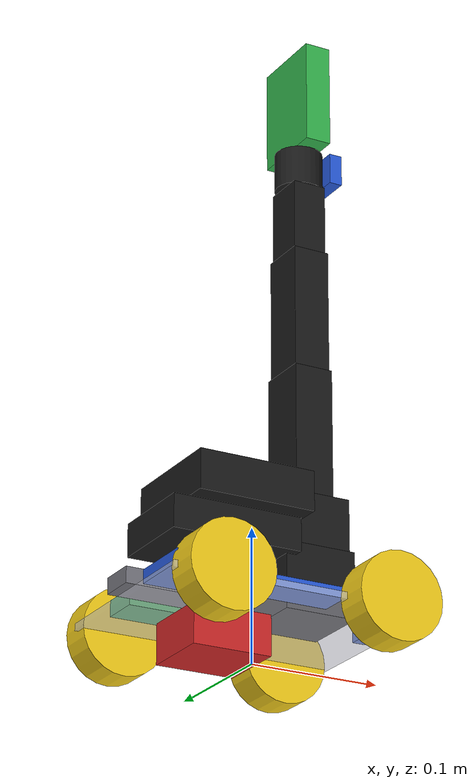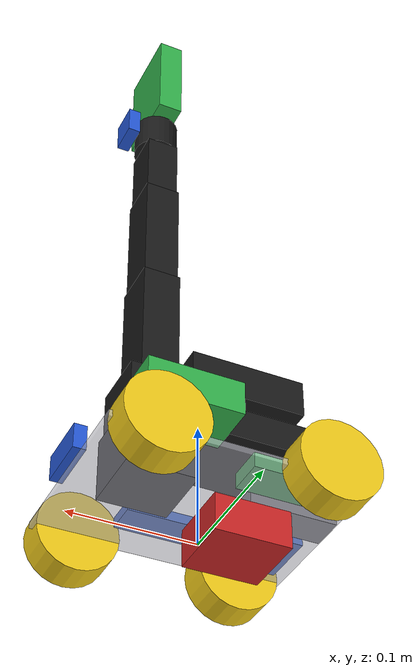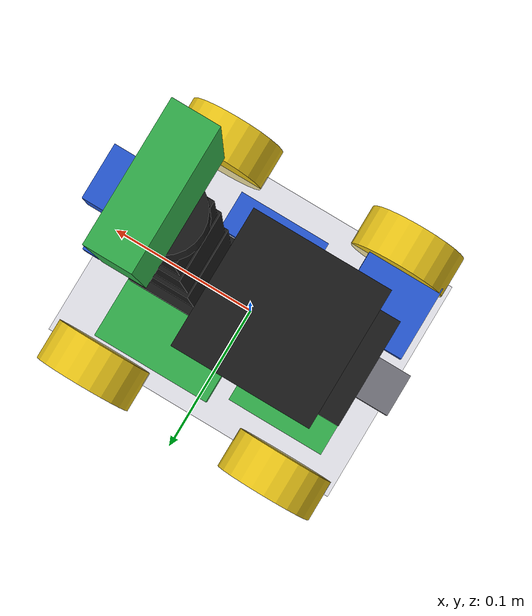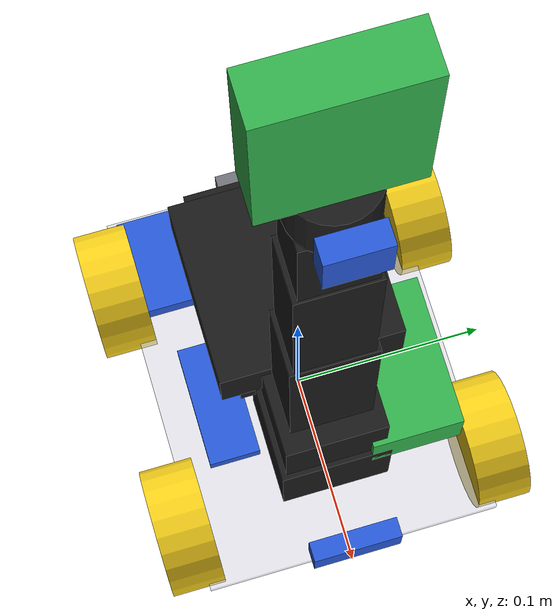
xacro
<?xml version="1.0"?>
<robot name="melvinn" xmlns:xacro="http://www.ros.org/wiki/xacro">

  <xacro:include filename="$(find melvinn_description)/urdf/inertia.xacro"/>

  <!-- ===================== dimensions (metres) ===================== -->
  <xacro:property name="chassis_len"   value="0.200"/>
  <xacro:property name="chassis_wid"   value="0.150"/>
  <xacro:property name="chassis_thick" value="0.005"/>

  <xacro:property name="wheel_radius"  value="0.0325"/>
  <xacro:property name="wheel_width"   value="0.027"/>
  <xacro:property name="wheel_x"       value="0.065"/>
  <xacro:property name="wheel_y"       value="0.080"/>

  <xacro:property name="arm_base_h"    value="0.050"/>
  <xacro:property name="upper_arm_len" value="0.100"/>
  <xacro:property name="forearm_len"   value="0.095"/>
  <xacro:property name="wrist_len"     value="0.055"/>
  <xacro:property name="gripper_len"   value="0.080"/>

  <xacro:property name="deck"  value="${chassis_thick/2}"/>   <!-- chassis top -->
  <xacro:property name="deck2" value="0.055"/>                <!-- upper tier -->

  <xacro:property name="PI" value="3.14159265359"/>

  <xacro:property name="chassis_mass"  value="0.250"/>
  <xacro:property name="wheel_mass"    value="0.135"/>  <!-- 65mm wheel + its JGA25 gearmotor -->

  <xacro:property name="m_arm_base"    value="0.075"/>
  <xacro:property name="m_shoulder"    value="0.075"/>
  <xacro:property name="m_upper_arm"   value="0.090"/>
  <xacro:property name="m_forearm"     value="0.075"/>
  <xacro:property name="m_wrist"       value="0.070"/>
  <xacro:property name="m_wrist_rot"   value="0.060"/>
  <xacro:property name="m_gripper"     value="0.080"/>

  <xacro:property name="m_pi"          value="0.029"/>
  <xacro:property name="m_power_bank"  value="0.350"/>
  <xacro:property name="m_drive_batt"  value="0.120"/>
  <xacro:property name="m_servo_batt"  value="0.200"/>
  <xacro:property name="m_pca9685"     value="0.010"/>
  <xacro:property name="m_drivers"     value="0.066"/>  <!-- 2x BTS7960 (IBT-2) -->
  <xacro:property name="m_speaker"     value="0.200"/>
  <xacro:property name="m_usb_hub"     value="0.040"/>
  <xacro:property name="m_ultrasonic"  value="0.010"/>
  <xacro:property name="m_camera"      value="0.015"/>

  <!-- ===================== materials ===================== -->
  <material name="acrylic"><color rgba="0.85 0.85 0.90 0.55"/></material>
  <material name="black">  <color rgba="0.10 0.10 0.10 1.0"/></material>
  <material name="yellow"> <color rgba="0.95 0.80 0.10 1.0"/></material>
  <material name="blue">   <color rgba="0.15 0.35 0.85 1.0"/></material>
  <material name="green">  <color rgba="0.20 0.70 0.30 1.0"/></material>
  <material name="red">    <color rgba="0.80 0.15 0.15 1.0"/></material>
  <material name="grey">   <color rgba="0.45 0.45 0.48 1.0"/></material>

  <xacro:macro name="wheel" params="name x y">
    <link name="wheel_${name}_link">
      <visual>
        <origin rpy="${PI/2} 0 0"/>
        <geometry><cylinder radius="${wheel_radius}" length="${wheel_width}"/></geometry>
        <material name="yellow"/>
      </visual>
      <xacro:cylinder_inertial mass="${wheel_mass}" radius="${wheel_radius}"
                               length="${wheel_width}">
        <origin rpy="${PI/2} 0 0"/>
      </xacro:cylinder_inertial>
    </link>
    <joint name="wheel_${name}_joint" type="continuous">
      <parent link="base_link"/>
      <child  link="wheel_${name}_link"/>
      <origin xyz="${x} ${y} 0"/>
      <axis xyz="0 1 0"/>
    </joint>
  </xacro:macro>

  <!-- ===================== chassis ===================== -->
  <link name="base_footprint"/>

  <joint name="base_joint" type="fixed">
    <parent link="base_footprint"/>
    <child  link="base_link"/>
    <origin xyz="0 0 ${wheel_radius}"/>
  </joint>

  <link name="base_link">
    <visual>
      <geometry><box size="${chassis_len} ${chassis_wid} ${chassis_thick}"/></geometry>
      <material name="acrylic"/>
    </visual>
    <xacro:box_inertial mass="${chassis_mass}" x="${chassis_len}"
                        y="${chassis_wid}" z="${chassis_thick}">
      <origin xyz="0 0 0"/>
    </xacro:box_inertial>
  </link>

  <xacro:wheel name="front_left"  x="${wheel_x}"  y="${wheel_y}"/>
  <xacro:wheel name="front_right" x="${wheel_x}"  y="${-wheel_y}"/>
  <xacro:wheel name="rear_left"   x="${-wheel_x}" y="${wheel_y}"/>
  <xacro:wheel name="rear_right"  x="${-wheel_x}" y="${-wheel_y}"/>

  <!-- AA pack slung under the chassis, as on the real bot -->
  <xacro:payload name="drive_battery" parent="base_link" mass="${m_drive_batt}"
                 x="0.060" y="0.055" z="0.030"
                 px="-0.030" py="0" pz="-0.020" colour="red"/>

  <xacro:payload name="pi" parent="base_link" mass="${m_pi}"
                 x="0.065" y="0.030" z="0.012"
                 px="-0.050" py="0.040" pz="${deck + 0.008}" colour="green"/>

  <xacro:payload name="drivers" parent="base_link" mass="${m_drivers}"
                 x="0.050" y="0.050" z="0.010"
                 px="-0.070" py="-0.045" pz="${deck + 0.006}" colour="blue"/>

  <xacro:payload name="pca9685" parent="base_link" mass="${m_pca9685}"
                 x="0.062" y="0.026" z="0.008"
                 px="0.010" py="-0.045" pz="${deck + 0.006}" colour="blue"/>

  <xacro:payload name="usb_hub" parent="base_link" mass="${m_usb_hub}"
                 x="0.070" y="0.028" z="0.012"
                 px="-0.070" py="0" pz="${deck + 0.008}" colour="grey"/>

  <!-- Heavy items ride on the upper tier — this is what lifts the CoG -->
  <xacro:payload name="power_bank" parent="base_link" mass="${m_power_bank}"
                 x="0.100" y="0.070" z="0.025"
                 px="-0.030" py="0" pz="${deck2}" colour="black"/>

  <xacro:payload name="servo_battery" parent="base_link" mass="${m_servo_batt}"
                 x="0.075" y="0.045" z="0.028"
                 px="0.030" py="0.040" pz="${deck2}" colour="green"/>

  <xacro:payload name="speakerphone" parent="base_link" mass="${m_speaker}"
                 x="0.090" y="0.090" z="0.030"
                 px="-0.020" py="0" pz="${deck2 + 0.030}" colour="black"/>

  <!-- ===================== ultrasonic ===================== -->
  <link name="ultrasonic_link">
    <visual>
      <geometry><box size="0.010 0.045 0.020"/></geometry>
      <material name="blue"/>
    </visual>
    <xacro:box_inertial mass="${m_ultrasonic}" x="0.010" y="0.045" z="0.020">
      <origin xyz="0 0 0"/>
    </xacro:box_inertial>
  </link>
  <joint name="ultrasonic_joint" type="fixed">
    <parent link="base_link"/>
    <child  link="ultrasonic_link"/>
    <origin xyz="${chassis_len/2} 0 0.015"/>
  </joint>

  <!-- ===================== arm ===================== -->
  <link name="arm_base_link">
    <visual>
      <origin xyz="0 0 ${arm_base_h/2}"/>
      <geometry><box size="0.055 0.055 ${arm_base_h}"/></geometry>
      <material name="black"/>
    </visual>
    <xacro:box_inertial mass="${m_arm_base}" x="0.055" y="0.055" z="${arm_base_h}">
      <origin xyz="0 0 ${arm_base_h/2}"/>
    </xacro:box_inertial>
  </link>
  <joint name="arm_mount_joint" type="fixed">
    <parent link="base_link"/>
    <child  link="arm_base_link"/>
    <origin xyz="0.040 0 ${deck}"/>
  </joint>

  <!-- ch 0: base — yaw. Centre 90 deg, so +/- 90 deg of travel. -->
  <link name="shoulder_link">
    <visual>
      <origin xyz="0 0 0.020"/>
      <geometry><box size="0.050 0.050 0.040"/></geometry>
      <material name="black"/>
    </visual>
    <xacro:box_inertial mass="${m_shoulder}" x="0.050" y="0.050" z="0.040">
      <origin xyz="0 0 0.020"/>
    </xacro:box_inertial>
  </link>
  <joint name="base" type="revolute">
    <parent link="arm_base_link"/>
    <child  link="shoulder_link"/>
    <origin xyz="0 0 ${arm_base_h}"/>
    <axis xyz="0 0 1"/>
    <limit lower="${-PI/2}" upper="${PI/2}" effort="10" velocity="1.0"/>
  </joint>

  <!-- ch 1: shoulder — pitch. Centre 180 deg (arm up and back, clearing the
       chassis), so travel runs 0..180 deg => -PI..0 rad. -->
  <link name="upper_arm_link">
    <visual>
      <origin xyz="0 0 ${upper_arm_len/2}"/>
      <geometry><box size="0.030 0.040 ${upper_arm_len}"/></geometry>
      <material name="black"/>
    </visual>
    <xacro:box_inertial mass="${m_upper_arm}" x="0.030" y="0.040" z="${upper_arm_len}">
      <origin xyz="0 0 ${upper_arm_len/2}"/>
    </xacro:box_inertial>
  </link>
  <joint name="shoulder" type="revolute">
    <parent link="shoulder_link"/>
    <child  link="upper_arm_link"/>
    <origin xyz="0 0 0.040"/>
    <axis xyz="0 1 0"/>
    <limit lower="${-PI}" upper="0.0" effort="10" velocity="1.0"/>
  </joint>

  <!-- ch 2: elbow — pitch. Centre 45 deg => -45..135 deg. -->
  <link name="forearm_link">
    <visual>
      <origin xyz="0 0 ${forearm_len/2}"/>
      <geometry><box size="0.028 0.036 ${forearm_len}"/></geometry>
      <material name="black"/>
    </visual>
    <xacro:box_inertial mass="${m_forearm}" x="0.028" y="0.036" z="${forearm_len}">
      <origin xyz="0 0 ${forearm_len/2}"/>
    </xacro:box_inertial>
  </link>
  <joint name="elbow" type="revolute">
    <parent link="upper_arm_link"/>
    <child  link="forearm_link"/>
    <origin xyz="0 0 ${upper_arm_len}"/>
    <axis xyz="0 1 0"/>
    <limit lower="${-PI/4}" upper="${3*PI/4}" effort="10" velocity="1.0"/>
  </joint>

  <!-- ch 3: wrist — pitch. Centre 90 deg. -->
  <link name="wrist_link">
    <visual>
      <origin xyz="0 0 ${wrist_len/2}"/>
      <geometry><box size="0.026 0.032 ${wrist_len}"/></geometry>
      <material name="black"/>
    </visual>
    <xacro:box_inertial mass="${m_wrist}" x="0.026" y="0.032" z="${wrist_len}">
      <origin xyz="0 0 ${wrist_len/2}"/>
    </xacro:box_inertial>
  </link>
  <joint name="wrist" type="revolute">
    <parent link="forearm_link"/>
    <child  link="wrist_link"/>
    <origin xyz="0 0 ${forearm_len}"/>
    <axis xyz="0 1 0"/>
    <limit lower="${-PI/2}" upper="${PI/2}" effort="10" velocity="1.0"/>
  </joint>

  <!-- ch 4: wrist_rotate — roll. Centre 90 deg. Verified empirically as
       channel 4 (the jog test proved it, against an earlier wrong guess). -->
  <link name="wrist_rotate_link">
    <visual>
      <origin xyz="0 0 0.015"/>
      <geometry><cylinder radius="0.018" length="0.030"/></geometry>
      <material name="black"/>
    </visual>
    <xacro:cylinder_inertial mass="${m_wrist_rot}" radius="0.018" length="0.030">
      <origin xyz="0 0 0.015"/>
    </xacro:cylinder_inertial>
  </link>
  <joint name="wrist_rotate" type="revolute">
    <parent link="wrist_link"/>
    <child  link="wrist_rotate_link"/>
    <origin xyz="0 0 ${wrist_len}"/>
    <axis xyz="0 0 1"/>
    <limit lower="${-PI/2}" upper="${PI/2}" effort="10" velocity="1.0"/>
  </joint>

  <!-- ch 5: gripper — the claw. -->
  <link name="gripper_link">
    <visual>
      <origin xyz="0 0 ${gripper_len/2}"/>
      <geometry><box size="0.020 0.060 ${gripper_len}"/></geometry>
      <material name="green"/>
    </visual>
    <xacro:box_inertial mass="${m_gripper}" x="0.020" y="0.060" z="${gripper_len}">
      <origin xyz="0 0 ${gripper_len/2}"/>
    </xacro:box_inertial>
  </link>
  <joint name="gripper" type="revolute">
    <parent link="wrist_rotate_link"/>
    <child  link="gripper_link"/>
    <origin xyz="0 0 0.030"/>
    <axis xyz="0 1 0"/>
    <limit lower="${-PI/2}" upper="${PI/2}" effort="10" velocity="1.0"/>
  </joint>

  <!-- ===================== camera ===================== -->
  <link name="camera_link">
    <visual>
      <geometry><box size="0.010 0.025 0.024"/></geometry>
      <material name="blue"/>
    </visual>
    <xacro:box_inertial mass="${m_camera}" x="0.010" y="0.025" z="0.024">
      <origin xyz="0 0 0"/>
    </xacro:box_inertial>
  </link>
  <joint name="camera_joint" type="fixed">
    <parent link="wrist_rotate_link"/>
    <child  link="camera_link"/>
    <origin xyz="0.025 0 0.020" rpy="0 0 0"/>
  </joint>

  <link name="camera_optical_frame"/>
  <joint name="camera_optical_joint" type="fixed">
    <parent link="camera_link"/>
    <child  link="camera_optical_frame"/>
    <origin rpy="${-PI/2} 0 ${-PI/2}"/>
  </joint>

</robot>

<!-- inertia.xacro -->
<robot xmlns:xacro="http://www.ros.org/wiki/xacro">

  <!-- Solid box about its centre -->
  <xacro:macro name="box_inertial" params="mass x y z *origin">
    <inertial>
      <xacro:insert_block name="origin"/>
      <mass value="${mass}"/>
      <inertia
        ixx="${mass * (y*y + z*z) / 12.0}" ixy="0" ixz="0"
        iyy="${mass * (x*x + z*z) / 12.0}" iyz="0"
        izz="${mass * (x*x + y*y) / 12.0}"/>
    </inertial>
  </xacro:macro>

  <!-- Solid cylinder about its centre, axis along z -->
  <xacro:macro name="cylinder_inertial" params="mass radius length *origin">
    <inertial>
      <xacro:insert_block name="origin"/>
      <mass value="${mass}"/>
      <inertia
        ixx="${mass * (3*radius*radius + length*length) / 12.0}" ixy="0" ixz="0"
        iyy="${mass * (3*radius*radius + length*length) / 12.0}" iyz="0"
        izz="${mass * radius * radius / 2.0}"/>
    </inertial>
  </xacro:macro>

  <!--
    A component that's just dead weight bolted to the chassis — battery,
    Pi, speakerphone. One macro makes a link with visual + mass and fixes
    it to a parent, since we have a lot of these.
  -->
  <xacro:macro name="payload" params="name parent mass x y z px py pz colour">
    <link name="${name}_link">
      <visual>
        <geometry><box size="${x} ${y} ${z}"/></geometry>
        <material name="${colour}"/>
      </visual>
      <xacro:box_inertial mass="${mass}" x="${x}" y="${y}" z="${z}">
        <origin xyz="0 0 0"/>
      </xacro:box_inertial>
    </link>
    <joint name="${name}_joint" type="fixed">
      <parent link="${parent}"/>
      <child  link="${name}_link"/>
      <origin xyz="${px} ${py} ${pz}"/>
    </joint>
  </xacro:macro>

</robot>
